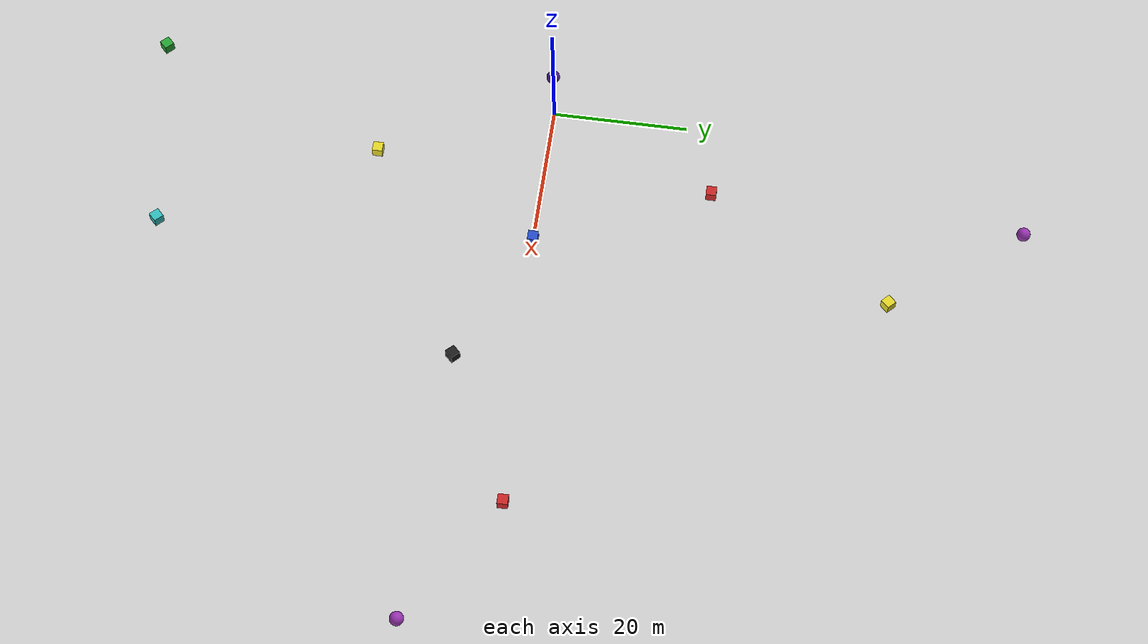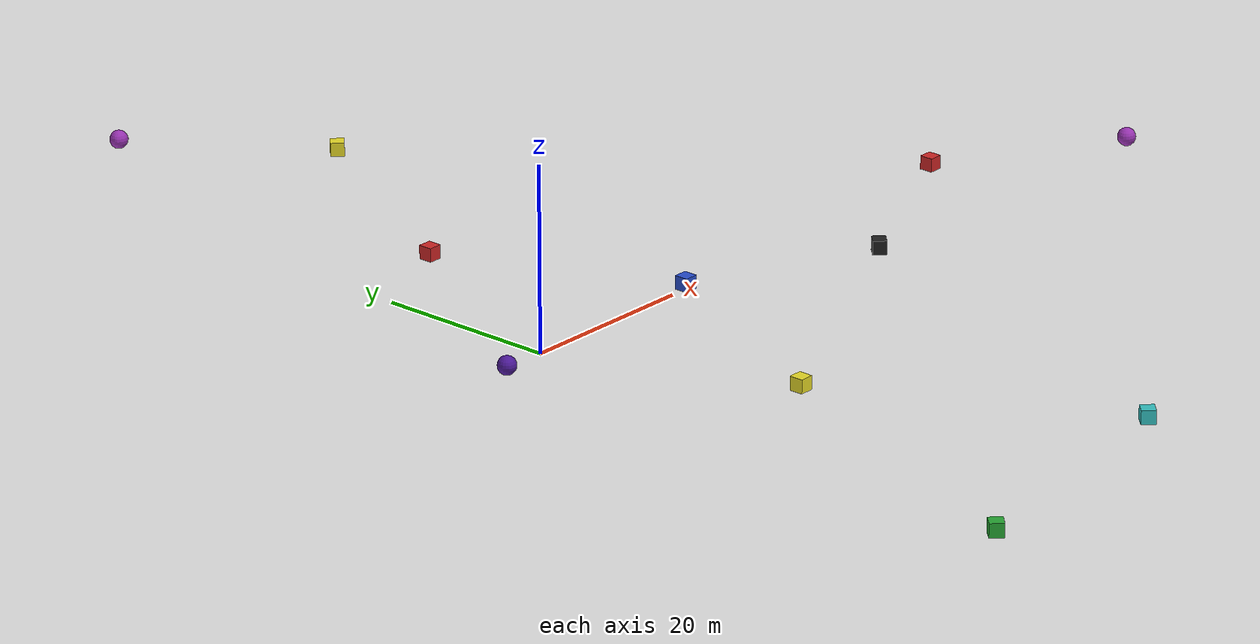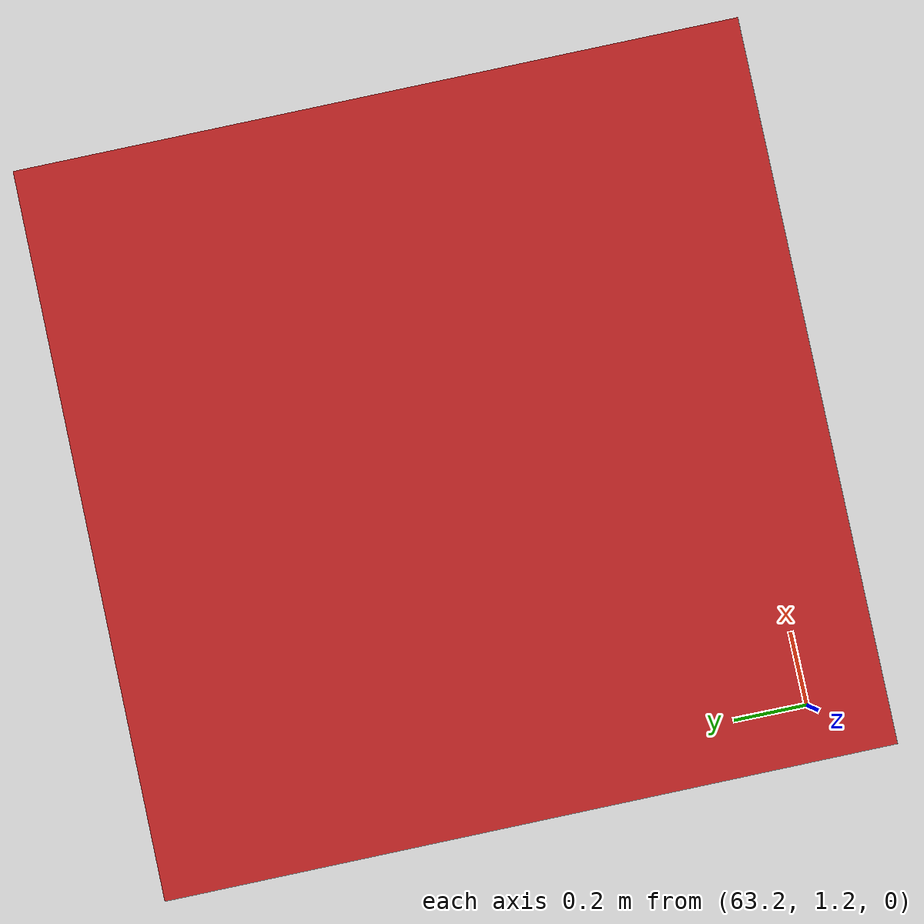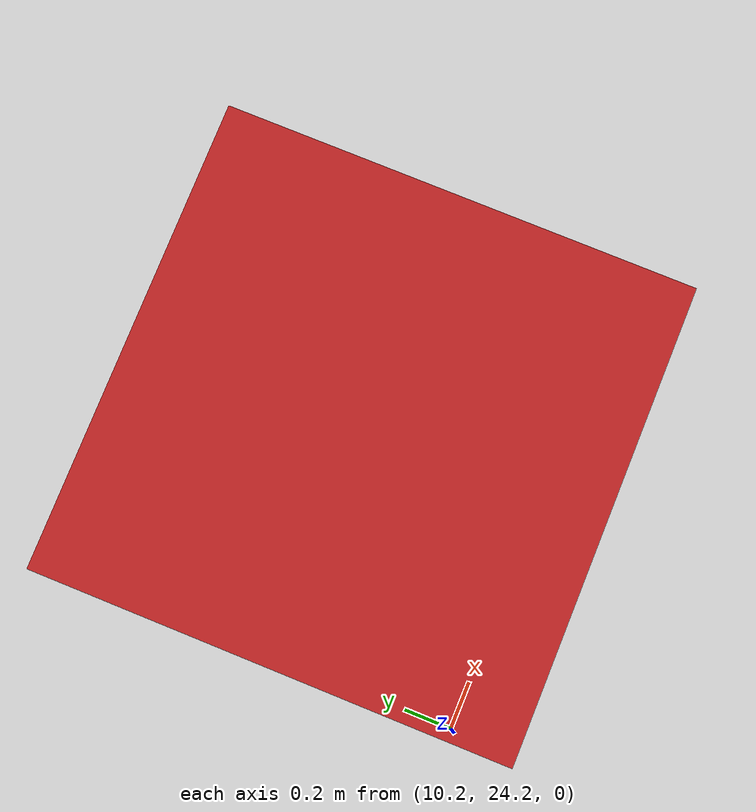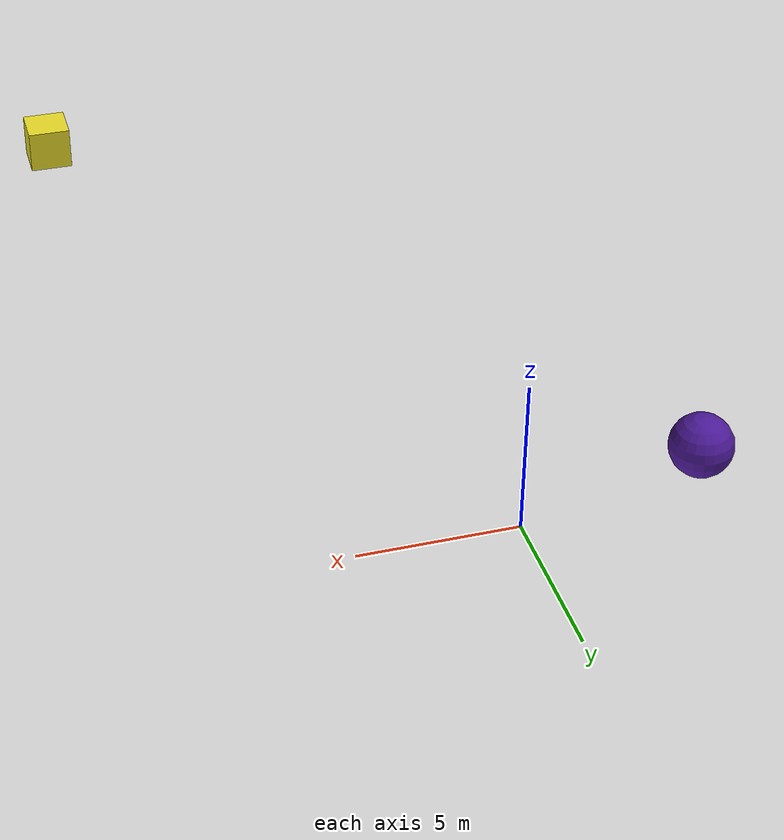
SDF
<sdf version="1.6">
 <world name="default">
  <light name="sun" type="directional">
   <pose>-11.8208 -19.3843 17.2198 0 -0 0</pose>
   <diffuse>0.7 0.7 0.7 1</diffuse>
   <specular>0.2 0.2 0.2 1</specular>
   <attenuation>
    <range>1000</range>
    <constant>0.9</constant>
    <linear>0.01</linear>
    <quadratic>0.001</quadratic>
   </attenuation>
   <direction>0.3698 0.4 -0.5</direction>
  </light>
  <scene><ambient>0.4 0.4 0.4 1</ambient><background>0.7 0.7 0.7 1</background><shadows>1</shadows></scene>
  <gravity>0 0 -9.8</gravity>
  <magnetic_field>6e-06 2.3e-05 -4.2e-05</magnetic_field>
  <atmosphere type="adiabatic"/>
  <physics name="default_physics" default="0" type="ode">
   <max_step_size>0.001</max_step_size>
   <real_time_factor>1</real_time_factor>
   <real_time_update_rate>1000</real_time_update_rate>
  </physics>
  <spherical_coordinates>
   <surface_model>EARTH_WGS84</surface_model>
   <latitude_deg>0</latitude_deg>
   <longitude_deg>0</longitude_deg>
   <elevation>0</elevation>
   <heading_deg>0</heading_deg>
  </spherical_coordinates>
  <audio><device>default</device></audio>
  <model name="Purple.png">
   <link name="link">
    <visual name="visual">
     <geometry><box><size>0.001 0.001 0.001</size></box></geometry>
     <material>
      <script><uri>file://custom_textures/materials/scripts/custom.material</uri><name>Purple.png</name></script>
     </material>
     <transparency>1</transparency>
    </visual>
    <inertial>
     <inertia><ixx>1</ixx><ixy>0</ixy><ixz>0</ixz><iyy>1</iyy><iyz>0</iyz><izz>1</izz></inertia>
     <mass>1</mass>
    </inertial>
   </link>
   <pose>0 0 -4.584e+09 0 -0 0</pose>
  </model>
  <model name="Orange.png">
   <link name="link">
    <visual name="visual">
     <geometry><box><size>0.001 0.001 0.001</size></box></geometry>
     <material>
      <script>
       <uri>file://custom_textures/materials/scripts/custom.material</uri>
       <name>Gazebo/TurquoiseGlow</name>
      </script>
     </material>
     <transparency>1</transparency>
    </visual>
    <inertial>
     <inertia><ixx>1</ixx><ixy>0</ixy><ixz>0</ixz><iyy>1</iyy><iyz>0</iyz><izz>1</izz></inertia>
     <mass>1</mass>
    </inertial>
   </link>
   <pose>0 0 -4.46177e+09 0 -0 0</pose>
  </model>
  <model name="box_1">
   <pose>22.0012 4.1e-05 0.773996 2e-06 -3e-06 1.5708</pose>
   <link name="link">
    <inertial>
     <mass>1</mass>
     <inertia><ixx>1</ixx><ixy>0</ixy><ixz>0</ixz><iyy>1</iyy><iyz>0</iyz><izz>1</izz></inertia>
    </inertial>
    <collision name="collision"><geometry><box><size>1.5 1.5 1.5</size></box></geometry></collision>
    <visual name="visual">
     <geometry><box><size>1.5 1.5 1.5</size></box></geometry>
     <material>
      <script><uri>file://media/materials/scripts/gazebo.material</uri><name>Gazebo/Blue</name></script>
     </material>
    </visual>
   </link>
  </model>
  <model name="box_1_1">
   <pose>11 24.892 0.774001 0 1e-06 1.5708</pose>
   <link name="link">
    <inertial>
     <mass>1</mass>
     <inertia><ixx>1</ixx><ixy>0</ixy><ixz>0</ixz><iyy>1</iyy><iyz>0</iyz><izz>1</izz></inertia>
    </inertial>
    <collision name="collision"><geometry><box><size>1.5 1.5 1.5</size></box></geometry></collision>
    <visual name="visual">
     <geometry><box><size>1.5 1.5 1.5</size></box></geometry>
     <material>
      <script><uri>file://media/materials/scripts/gazebo.material</uri><name>Gazebo/Red</name></script>
     </material>
    </visual>
   </link>
  </model>
  <model name="sphere_0_0">
   <pose>-6 -1 1.024 0 -0 0</pose>
   <link name="link">
    <inertial>
     <mass>1</mass>
     <inertia><ixx>1</ixx><ixy>0</ixy><ixz>0</ixz><iyy>1</iyy><iyz>0</iyz><izz>1</izz></inertia>
    </inertial>
    <collision name="collision"><geometry><sphere><radius>1</radius></sphere></geometry></collision>
    <visual name="visual">
     <geometry><sphere><radius>1</radius></sphere></geometry>
     <material>
      <script><uri>file://media/materials/scripts/gazebo.material</uri><name>Gazebo/Indigo</name></script>
     </material>
    </visual>
   </link>
  </model>
  <model name="box_1_1_1">
   <pose>64 1.99998 0.773995 2e-06 3e-06 1.57079</pose>
   <link name="link">
    <inertial>
     <mass>1</mass>
     <inertia><ixx>1</ixx><ixy>0</ixy><ixz>0</ixz><iyy>1</iyy><iyz>0</iyz><izz>1</izz></inertia>
    </inertial>
    <collision name="collision"><geometry><box><size>1.5 1.5 1.5</size></box></geometry></collision>
    <visual name="visual">
     <geometry><box><size>1.5 1.5 1.5</size></box></geometry>
     <material>
      <script><uri>file://media/materials/scripts/gazebo.material</uri><name>Gazebo/Red</name></script>
     </material>
    </visual>
   </link>
  </model>
  <model name="box_1_1_1_0">
   <pose>-4.001 -60.007 0.773995 -3e-06 3e-06 0.785398</pose>
   <link name="link">
    <inertial>
     <mass>1</mass>
     <inertia><ixx>1</ixx><ixy>0</ixy><ixz>0</ixz><iyy>1</iyy><iyz>0</iyz><izz>1</izz></inertia>
    </inertial>
    <collision name="collision"><geometry><box><size>1.5 1.5 1.5</size></box></geometry></collision>
    <visual name="visual">
     <geometry><box><size>1.5 1.5 1.5</size></box></geometry>
     <material>
      <script><uri>file://media/materials/scripts/gazebo.material</uri><name>Gazebo/Green</name></script>
     </material>
    </visual>
   </link>
  </model>
  <model name="sphere_0_1">
   <pose>83 -9.5 1.024 -0.017144 0 0</pose>
   <link name="link">
    <inertial>
     <mass>1</mass>
     <inertia><ixx>1</ixx><ixy>0</ixy><ixz>0</ixz><iyy>1</iyy><iyz>0</iyz><izz>1</izz></inertia>
    </inertial>
    <collision name="collision"><geometry><sphere><radius>1</radius></sphere></geometry></collision>
    <visual name="visual">
     <geometry><sphere><radius>1</radius></sphere></geometry>
     <material>
      <script><uri>file://media/materials/scripts/gazebo.material</uri><name>Gazebo/Purple</name></script>
     </material>
    </visual>
   </link>
  </model>
  <model name="box_1_1_0_0">
   <pose>42.432 -8.4991 0.773995 -3e-06 3e-06 0.785398</pose>
   <link name="link">
    <inertial>
     <mass>1</mass>
     <inertia><ixx>1</ixx><ixy>0</ixy><ixz>0</ixz><iyy>1</iyy><iyz>0</iyz><izz>1</izz></inertia>
    </inertial>
    <collision name="collision"><geometry><box><size>1.5 1.5 1.5</size></box></geometry></collision>
    <visual name="visual">
     <geometry><box><size>1.5 1.5 1.5</size></box></geometry>
     <material>
      <script><uri>file://media/materials/scripts/gazebo.material</uri><name>Gazebo/Black</name></script>
     </material>
    </visual>
   </link>
  </model>
  <model name="box_1_0_1">
   <pose>9.99999 -24.999 0.774001 0 1e-06 1.5708</pose>
   <link name="link">
    <inertial>
     <mass>1</mass>
     <inertia><ixx>1</ixx><ixy>0</ixy><ixz>0</ixz><iyy>1</iyy><iyz>0</iyz><izz>1</izz></inertia>
    </inertial>
    <collision name="collision"><geometry><box><size>1.5 1.5 1.5</size></box></geometry></collision>
    <visual name="visual">
     <geometry><box><size>1.5 1.5 1.5</size></box></geometry>
     <material>
      <script><uri>file://media/materials/scripts/gazebo.material</uri><name>Gazebo/Yellow</name></script>
     </material>
    </visual>
   </link>
  </model>
  <model name="sphere_0_1_0">
   <pose>12 70.718 1.024 0.005095 -9.7e-05 -1e-06</pose>
   <link name="link">
    <inertial>
     <mass>1</mass>
     <inertia><ixx>1</ixx><ixy>0</ixy><ixz>0</ixz><iyy>1</iyy><iyz>0</iyz><izz>1</izz></inertia>
    </inertial>
    <collision name="collision"><geometry><sphere><radius>1</radius></sphere></geometry></collision>
    <visual name="visual">
     <geometry><sphere><radius>1</radius></sphere></geometry>
     <material>
      <script><uri>file://media/materials/scripts/gazebo.material</uri><name>Gazebo/Purple</name></script>
     </material>
    </visual>
   </link>
  </model>
  <model name="box_1_0_1_0">
   <pose>26 -55 0.773995 3e-06 3e-06 0.785398</pose>
   <link name="link">
    <inertial>
     <mass>1</mass>
     <inertia><ixx>1</ixx><ixy>0</ixy><ixz>0</ixz><iyy>1</iyy><iyz>0</iyz><izz>1</izz></inertia>
    </inertial>
    <collision name="collision"><geometry><box><size>1.5 1.5 1.5</size></box></geometry></collision>
    <visual name="visual">
     <geometry><box><size>1.5 1.5 1.5</size></box></geometry>
     <material>
      <script><uri>file://media/materials/scripts/gazebo.material</uri><name>Gazebo/TurquoiseGlow</name></script>
     </material>
    </visual>
   </link>
  </model>
  <model name="box_1_0_1_1">
   <pose>26 52.072 0.773993 0 -0 0.785398</pose>
   <link name="link">
    <inertial>
     <mass>1</mass>
     <inertia><ixx>1</ixx><ixy>0</ixy><ixz>0</ixz><iyy>1</iyy><iyz>0</iyz><izz>1</izz></inertia>
    </inertial>
    <collision name="collision"><geometry><box><size>1.5 1.5 1.5</size></box></geometry></collision>
    <visual name="visual">
     <geometry><box><size>1.5 1.5 1.5</size></box></geometry>
     <material>
      <script><uri>file://media/materials/scripts/gazebo.material</uri><name>Gazebo/Yellow</name></script>
     </material>
    </visual>
   </link>
  </model>
 </world>
</sdf>
